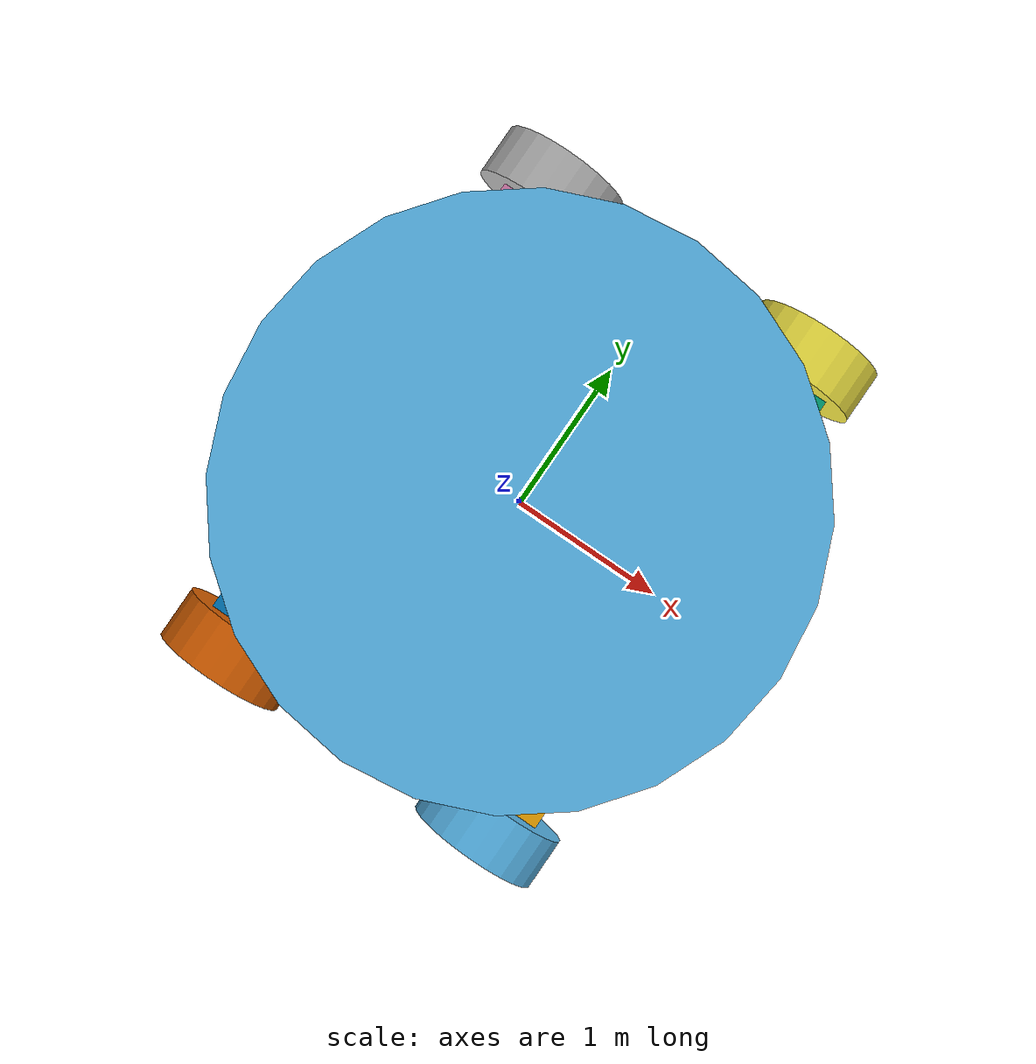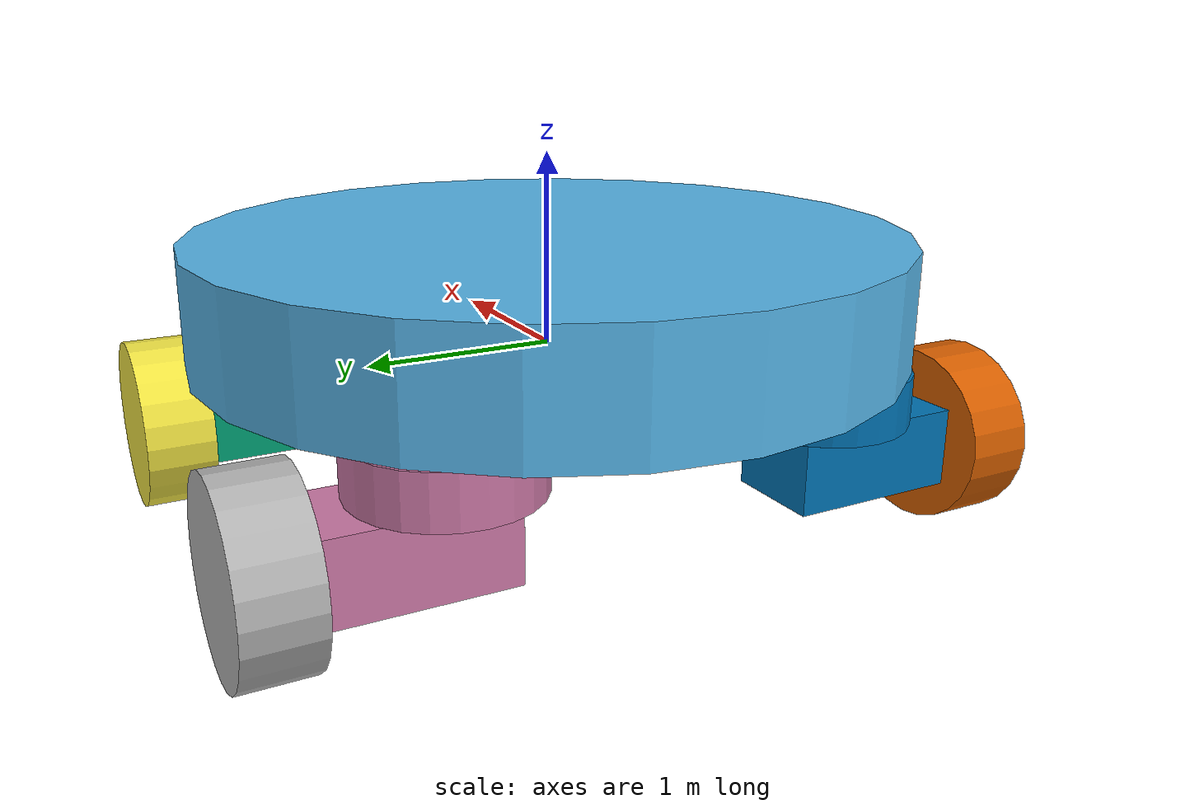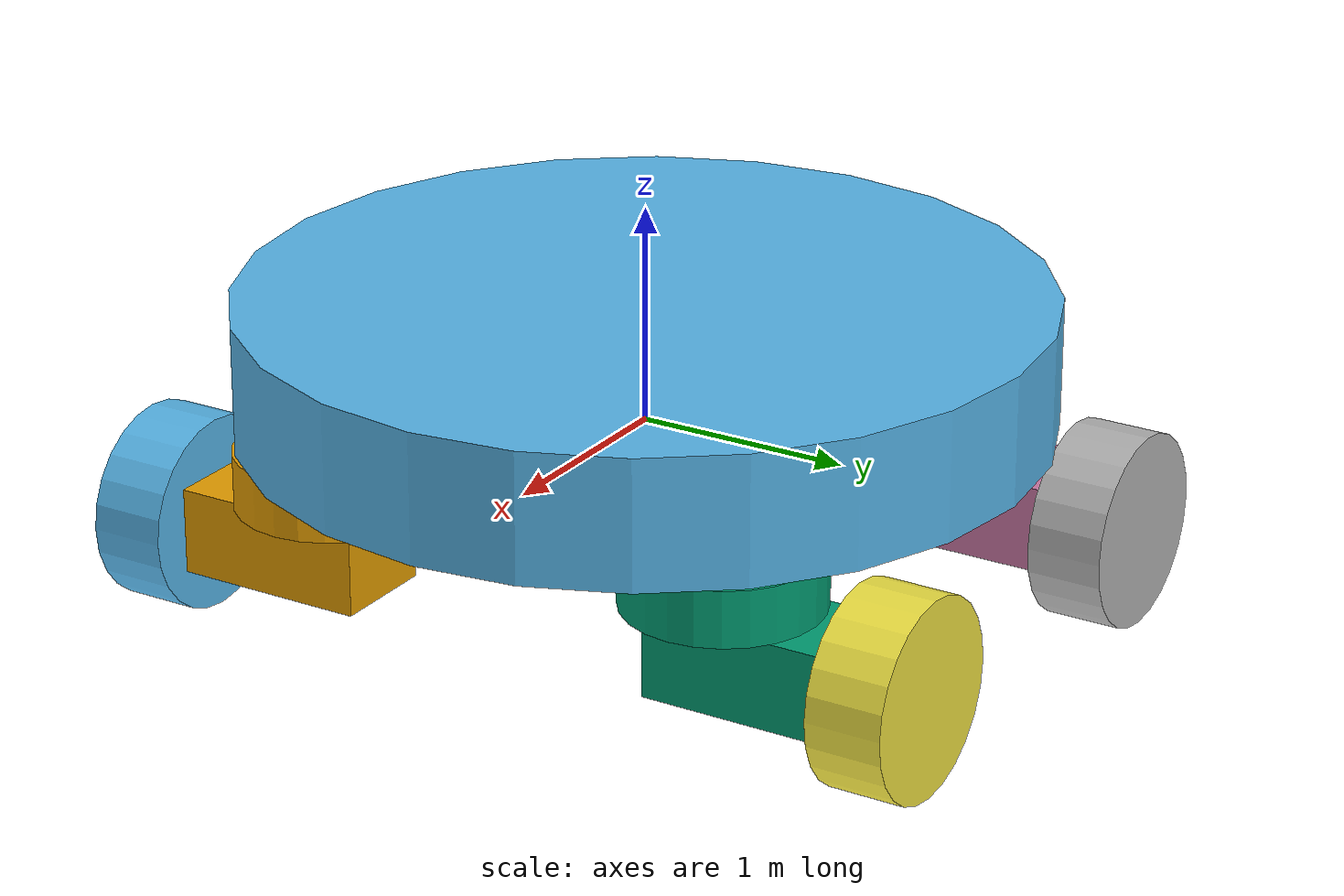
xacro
<?xml version="1.0" ?> <!--encoding="utf-8"-->
<robot name ="my_robot" xmlns:xacro="http://www.ros.org/wiki/xacro" >

	<link name = "world"/>
<xacro:macro name="default_inertial" params="mass">
	<inertial>
		<mass value="${mass}" />
		<inertia ixx="0.01" ixy="0.0" ixz="0.0"
				 iyy="0.01" iyz="0.0"
				 izz="0.01" />
	</inertial>
</xacro:macro>
	<link name ="base_link">
		<collision>
			<origin xyz ="0 0 0.3"/>
			<geometry>
				<cylinder length = "0.6" radius = "1.85"/>
			</geometry>
        </collision>
		<visual>
			<geometry>
				<cylinder length = "0.6" radius = "1.85"/>
			</geometry>
			<origin xyz ="0 0 0.3"/>
		</visual>
        <xacro:default_inertial mass = "0.5"/>
	</link>

	<joint name = "world_to_base" type= "fixed">
		<axis xyz = "0 0 1"/>
		<parent link = "world"/>
		<child link = "base_link"/>
		<origin xyz = "0 0 0"/>
	</joint>

<xacro:macro name ="link_leg" params = "name_leg number_wheel coord_joint angles_joint" >
	<link name = "${name_leg}">
		<visual>
			<geometry>
				<cylinder length = "0.26" radius = "0.45"/>
			</geometry>
			<origin xyz = "0 0 -0.13"/>
		</visual>
		<collision>
			<origin xyz = "0 0 -0.13"/>
			<geometry>
				<cylinder length = "0.26" radius = "0.45"/>
			</geometry>
        </collision>
		<inertial>
        <mass value="0.5"/>
        <inertia ixx="0.01" ixy="0.0" ixz="0.0"
                 iyy="0.01" iyz="0.0"
                 izz="0.01" />
      	</inertial>
		<visual>
			<geometry>
				<box size = "0.5 0.9 0.4"/>
			</geometry>
			<origin xyz = " 0 0.2 -0.46"/>
		</visual>
		<collision>
			<origin xyz = " 0 0.2 -0.46"/>
			<geometry>
				<box size = "0.5 0.9 0.4"/>
			</geometry>
        </collision>
		<inertial>
        <mass value="0.5"/>
        <inertia ixx="0.01" ixy="0.0" ixz="0.0"
                 iyy="0.01" iyz="0.0"
                 izz="0.01" />
      	</inertial>
	</link>

	<joint name ="base_to_${name_leg}" type ="fixed"> <!--revolute-->
		<axis xyz="0 0 1"/>
		<limit effort= "1000.0" lower="-1" upper="1" velocity="0.3"/>
		<parent link ="base_link"/>
		<child link = "${name_leg}"/>
		<origin xyz = "${coord_joint}" rpy = "${angles_joint}"/>
	</joint>

	<link name = "${number_wheel}">
		<visual>
			<geometry>
				<cylinder length = "0.35" radius = "0.45"/>
			</geometry>
			<origin rpy = "1.57 0 0" xyz = "0 0.175 0"/>
		</visual>
		<collision>
			<origin rpy = "1.57 0 0" xyz = "0 0.175 0"/>
			<geometry>
				<cylinder length = "0.35" radius = "0.45"/>
			</geometry>
       	</collision>
		<inertial>
		<mass value="0.5"/>
		<inertia ixx="0.01" ixy="0.0" ixz="0.0"
           	     iyy="0.01" iyz="0.0"
           	     izz="0.01" />
      	</inertial>
	</link>

	<joint name = "${name_leg}_to_${number_wheel}" type = "continuous"> <!--continuous-->
		<axis xyz="0 1 0"/>
		<limit effort= "1000.0" velocity="1"/>
		<parent link = "${name_leg}"/>
		<child link = "${number_wheel}"/>
		<origin xyz = "0 0.65 -0.46"/>
		<dynamics damping="0.5"/>
	</joint>

    <transmission name="transmission_${number_wheel}">
     	<type>transmission_interface/SimpleTransmission</type>
     	<joint name="${name_leg}_to_${number_wheel}">
      		<hardwareInterface>hardware_interface/EffortJointInterface</hardwareInterface>
     	</joint>
     	<actuator name="motor_${number_wheel}">
      		<hardwareInterface>hardware_interface/EffortJointInterface</hardwareInterface>
      		<mechanicalReduction>1</mechanicalReduction>
     	</actuator>
  	</transmission>

</xacro:macro>

<xacro:link_leg name_leg = "first_leg" number_wheel = "wheel1"
	            coord_joint = "1 1 0" angles_joint = "0 0 0"/>

<xacro:link_leg name_leg = "second_leg" number_wheel = "wheel2"
	            coord_joint = "-1 -1 0" angles_joint = "0 0 3.142"/>

<xacro:link_leg name_leg = "third_leg" number_wheel = "wheel3"
	            coord_joint = "-1 1 0" angles_joint= "0 0 0"/>

<xacro:link_leg name_leg = "fourth_leg" number_wheel = "wheel4"
	            coord_joint = "1 -1 0" angles_joint= "0 0 3.142"/>

<gazebo>
  <plugin name="gazebo_ros_control" filename="libgazebo_ros_control.so">
    <robotNamespace>/crobot</robotNamespace>
  </plugin>
</gazebo>

</robot>
